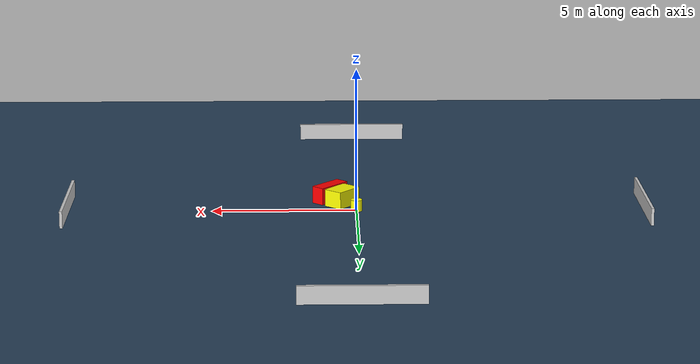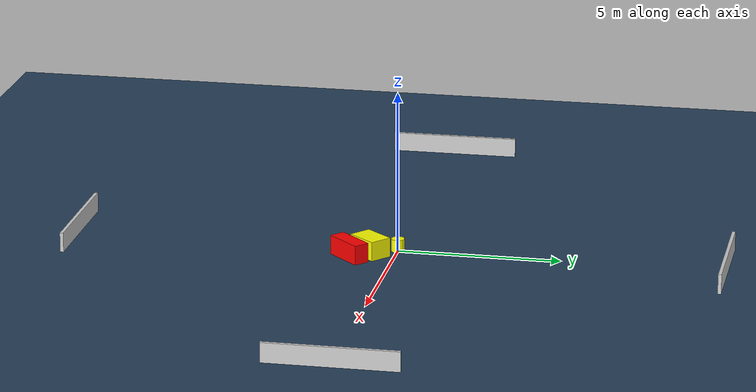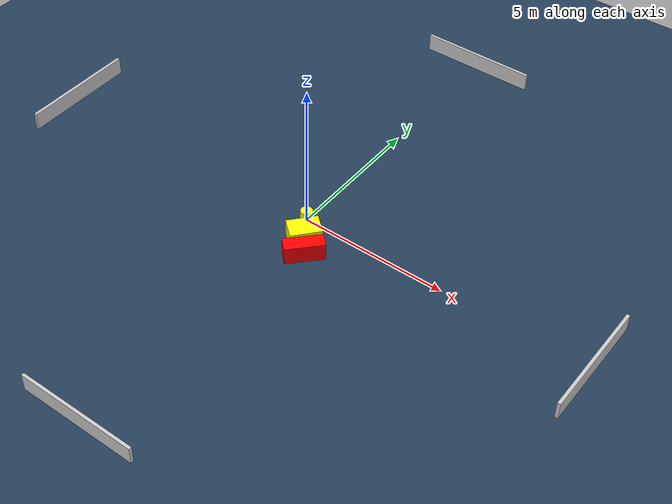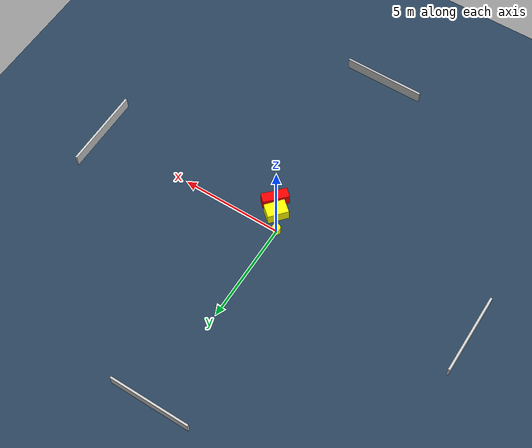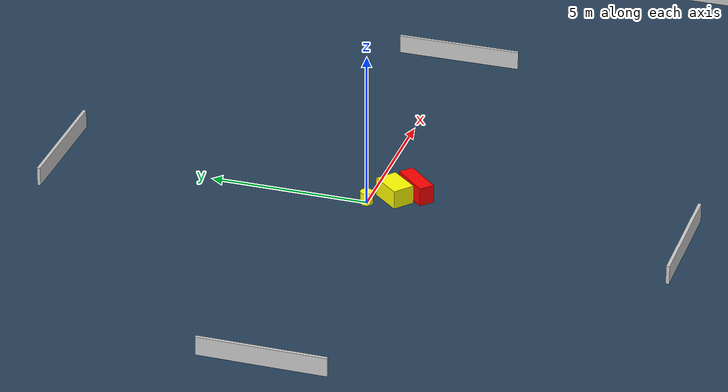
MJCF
<?xml version="1.0" ?>
<mujoco model="generated_environment">
  <option timestep="0.01" integrator="RK4" cone="elliptic"/>
  <default>
    <geom density="1"/>
  </default>
  <asset>
    <texture builtin="gradient" height="3072" name="skybox" rgb1="0.3 0.5 0.7" rgb2="0 0 0" type="skybox" width="512"/>
    <texture builtin="checker" height="300" name="groundplane" rgb1="0.2 0.3 0.4" rgb2="0.1 0.2 0.3" type="2d" width="300"/>
    <material name="groundplane" reflectance="0.2" texrepeat="5 5" texture="groundplane"/>
  </asset>
  <worldbody>
    <light dir="0 0 -1" directional="true" pos="0 0 1.5"/>
    <geom condim="3" friction="0.5 0.005 0.001" material="groundplane" name="floor" pos="0 0 0" size="0 0 0.05" type="plane"/>
    <body name="walls">
      <geom name="wall_1" condim="4" pos="-10.0 0.0 0.3" rgba="0.800000011920929 0.800000011920929 0.800000011920929 1.0" size="0.05 2.0 0.3" type="box"/>
      <geom name="wall_2" condim="4" pos="10.0 0.0 0.3" rgba="0.800000011920929 0.800000011920929 0.800000011920929 1.0" size="0.05 2.0 0.3" type="box"/>
      <geom name="wall_3" condim="4" pos="0.0 -10.0 0.3" rgba="0.800000011920929 0.800000011920929 0.800000011920929 1.0" size="2.0 0.05 0.3" type="box"/>
      <geom name="wall_4" condim="4" pos="0.0 10.0 0.3" rgba="0.800000011920929 0.800000011920929 0.800000011920929 1.0" size="2.0 0.05 0.3" type="box"/>
    </body>
    <body name="robot">
      <joint name="joint_x" type="slide" pos="0 0 0" axis="1 0 0"/>
      <joint name="joint_y" type="slide" pos="0 0 0" axis="0 1 0"/>
      <geom name="robot" type="cylinder" pos="0.0 0.0 0.2" size="0.2 0.2 0.0" mass="5.0" friction="1.0 0.005 0.0001" condim="4" rgba="1.0 1.0 0.0 1.0"/>
    </body>
    <body name="obstacle_1_movable">
      <geom name="obstacle_1_movable" condim="4" pos="0.48607379387563593 -0.7538093932041577 0.3" euler="0 0 139.60548213369944" friction="0.0 0.005 0.001" rgba="1.0 1.0 0.0 1.0" size="0.35087552429665336 0.512265568278411 0.3" type="box" mass="0.1"/>
      <joint type="free"/>
    </body>
    <body name="obstacle_2_static">
      <geom name="obstacle_2_static" condim="4" pos="0.9059065947731875 -1.3155358449840522 0.3" euler="0 0 46.72370398797597" friction="0.0 0.005 0.001" rgba="1.0 0.0 0.0 1.0" size="0.642530588013625 0.24189622961937057 0.3" type="box"/>
    </body>
  </worldbody>
  <actuator>
    <motor name="actuator_x" joint="joint_x" gear="1" ctrlrange="-1 1"/>
    <motor name="actuator_y" joint="joint_y" gear="1" ctrlrange="-1 1"/>
  </actuator>
</mujoco>
